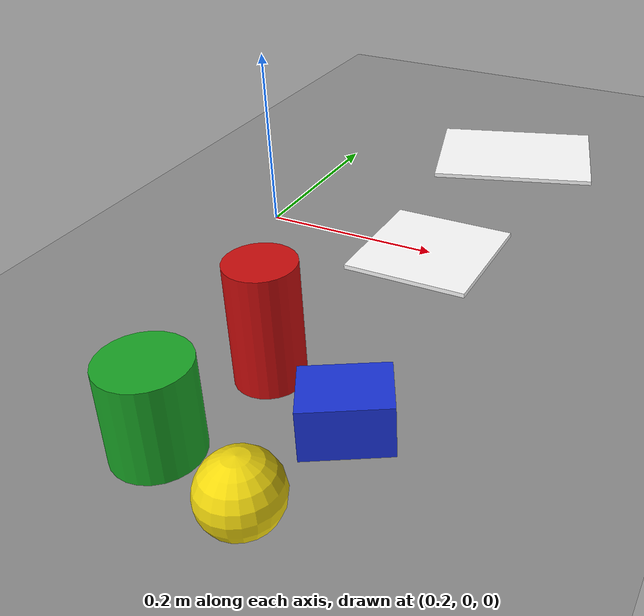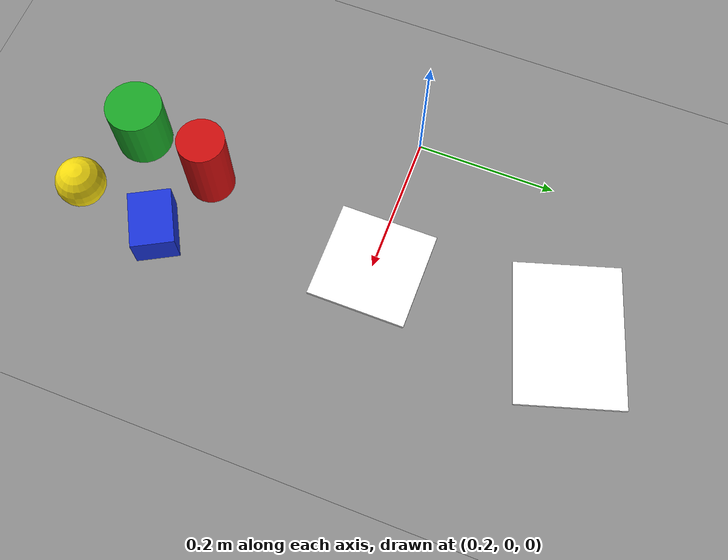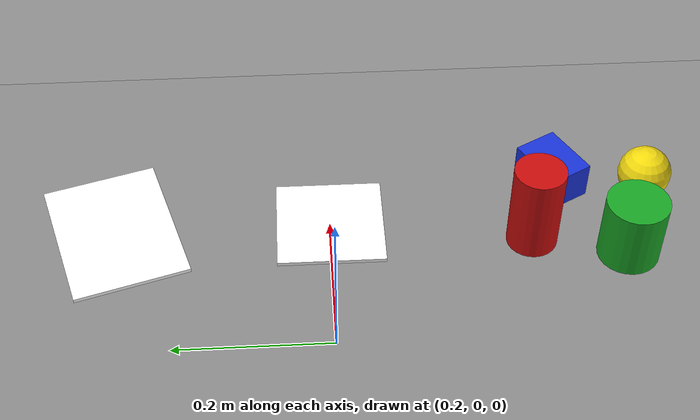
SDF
<?xml version="1.0"?>
<!--
  Visual servoing world (Gazebo Harmonic).
  Object poses must match config/targets.yaml (checked by test/test_config.py).
  The robot is spawned at the origin by the launch file.
-->
<sdf version="1.9">
  <world name="vs_world">
    <physics name="1ms" type="ignored">
      <max_step_size>0.001</max_step_size>
      <real_time_factor>1.0</real_time_factor>
    </physics>

    <plugin filename="gz-sim-physics-system" name="gz::sim::systems::Physics"/>
    <plugin filename="gz-sim-user-commands-system" name="gz::sim::systems::UserCommands"/>
    <plugin filename="gz-sim-scene-broadcaster-system" name="gz::sim::systems::SceneBroadcaster"/>
    <plugin filename="gz-sim-sensors-system" name="gz::sim::systems::Sensors">
      <render_engine>ogre2</render_engine>
    </plugin>

    <gravity>0 0 -9.81</gravity>
    <scene>
      <ambient>0.5 0.5 0.5 1</ambient>
      <background>0.75 0.8 0.85 1</background>
      <shadows>true</shadows>
      <grid>false</grid>
    </scene>

    <light type="directional" name="sun">
      <cast_shadows>true</cast_shadows>
      <pose>0 0 10 0 0 0</pose>
      <diffuse>0.85 0.85 0.85 1</diffuse>
      <specular>0.2 0.2 0.2 1</specular>
      <direction>-0.3 0.2 -0.9</direction>
    </light>

    <light type="point" name="lab_light">
      <cast_shadows>false</cast_shadows>
      <pose>0.6 -0.4 1.6 0 0 0</pose>
      <diffuse>0.4 0.4 0.4 1</diffuse>
      <specular>0.1 0.1 0.1 1</specular>
      <attenuation>
        <range>6</range>
        <constant>0.6</constant>
        <linear>0.05</linear>
        <quadratic>0.01</quadratic>
      </attenuation>
    </light>

    <model name="ground_plane">
      <static>true</static>
      <link name="link">
        <collision name="collision">
          <geometry><plane><normal>0 0 1</normal><size>10 10</size></plane></geometry>
        </collision>
        <visual name="visual">
          <geometry><plane><normal>0 0 1</normal><size>10 10</size></plane></geometry>
          <material>
            <ambient>0.55 0.55 0.55 1</ambient>
            <diffuse>0.55 0.55 0.55 1</diffuse>
            <specular>0.05 0.05 0.05 1</specular>
          </material>
        </visual>
      </link>
    </model>

    <!-- Targets (x y z roll pitch yaw) -->
    <include>
      <uri>model://aruco_target</uri>
      <name>aruco_target</name>
      <pose>0.40 0.00 0.0 0 0 0.0</pose>
    </include>
    <include>
      <uri>model://feature_target</uri>
      <name>feature_target</name>
      <pose>0.40 0.28 0.0 0 0 0.3</pose>
    </include>
    <include>
      <uri>model://red_can</uri>
      <name>red_can</name>
      <pose>0.36 -0.26 0.0 0 0 0.0</pose>
    </include>
    <include>
      <uri>model://blue_box</uri>
      <name>blue_box</name>
      <pose>0.46 -0.30 0.0 0 0 0.5</pose>
    </include>
    <include>
      <uri>model://green_cup</uri>
      <name>green_cup</name>
      <pose>0.33 -0.38 0.0 0 0 0.0</pose>
    </include>
    <include>
      <uri>model://yellow_ball</uri>
      <name>yellow_ball</name>
      <pose>0.44 -0.42 0.0 0 0 0.0</pose>
    </include>
  </world>
</sdf>

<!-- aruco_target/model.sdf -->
<sdf version="1.9">
  <model name="aruco_target">
    <static>true</static>
    <link name="link">
      <collision name="collision">
        <pose>0 0 0.0025 0 0 0</pose>
        <geometry><box><size>0.14 0.14 0.005</size></box></geometry>
      </collision>
      <visual name="visual">
        <pose>0 0 0.0025 0 0 0</pose>
        <geometry><box><size>0.14 0.14 0.005</size></box></geometry>
        <material>
          <ambient>1 1 1 1</ambient>
          <diffuse>1 1 1 1</diffuse>
          <specular>0.05 0.05 0.05 1</specular>
          <pbr>
            <metal>
              <albedo_map>model://aruco_target/materials/textures/aruco_4x4_50_id0.png</albedo_map>
              <roughness>0.9</roughness>
              <metalness>0.0</metalness>
            </metal>
          </pbr>
        </material>
      </visual>
    </link>
  </model>
</sdf>

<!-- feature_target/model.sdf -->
<sdf version="1.9">
  <model name="feature_target">
    <static>true</static>
    <link name="link">
      <collision name="collision">
        <pose>0 0 0.0025 0 0 0</pose>
        <geometry><box><size>0.2 0.15 0.005</size></box></geometry>
      </collision>
      <visual name="visual">
        <pose>0 0 0.0025 0 0 0</pose>
        <geometry><box><size>0.2 0.15 0.005</size></box></geometry>
        <material>
          <ambient>1 1 1 1</ambient>
          <diffuse>1 1 1 1</diffuse>
          <specular>0.05 0.05 0.05 1</specular>
          <pbr>
            <metal>
              <albedo_map>model://feature_target/materials/textures/feature_board.png</albedo_map>
              <roughness>0.9</roughness>
              <metalness>0.0</metalness>
            </metal>
          </pbr>
        </material>
      </visual>
    </link>
  </model>
</sdf>

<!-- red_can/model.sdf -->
<sdf version="1.9">
  <model name="red_can">
    <static>true</static>
    <link name="link">
      <collision name="collision">
        <pose>0 0 0.06 0 0 0</pose>
        <geometry><cylinder><radius>0.033</radius><length>0.12</length></cylinder></geometry>
      </collision>
      <visual name="visual">
        <pose>0 0 0.06 0 0 0</pose>
        <geometry><cylinder><radius>0.033</radius><length>0.12</length></cylinder></geometry>
        <material>
          <ambient>0.8 0.05 0.05 1</ambient>
          <diffuse>0.8 0.05 0.05 1</diffuse>
          <specular>0.3 0.3 0.3 1</specular>
        </material>
      </visual>
    </link>
  </model>
</sdf>

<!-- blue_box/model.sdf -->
<sdf version="1.9">
  <model name="blue_box">
    <static>true</static>
    <link name="link">
      <collision name="collision">
        <pose>0 0 0.025 0 0 0</pose>
        <geometry><box><size>0.08 0.06 0.05</size></box></geometry>
      </collision>
      <visual name="visual">
        <pose>0 0 0.025 0 0 0</pose>
        <geometry><box><size>0.08 0.06 0.05</size></box></geometry>
        <material>
          <ambient>0.1 0.2 0.85 1</ambient>
          <diffuse>0.1 0.2 0.85 1</diffuse>
          <specular>0.3 0.3 0.3 1</specular>
        </material>
      </visual>
    </link>
  </model>
</sdf>

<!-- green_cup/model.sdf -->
<sdf version="1.9">
  <model name="green_cup">
    <static>true</static>
    <link name="link">
      <collision name="collision">
        <pose>0 0 0.045 0 0 0</pose>
        <geometry><cylinder><radius>0.04</radius><length>0.09</length></cylinder></geometry>
      </collision>
      <visual name="visual">
        <pose>0 0 0.045 0 0 0</pose>
        <geometry><cylinder><radius>0.04</radius><length>0.09</length></cylinder></geometry>
        <material>
          <ambient>0.1 0.65 0.15 1</ambient>
          <diffuse>0.1 0.65 0.15 1</diffuse>
          <specular>0.3 0.3 0.3 1</specular>
        </material>
      </visual>
    </link>
  </model>
</sdf>

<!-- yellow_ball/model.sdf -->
<sdf version="1.9">
  <model name="yellow_ball">
    <static>true</static>
    <link name="link">
      <collision name="collision">
        <pose>0 0 0.035 0 0 0</pose>
        <geometry><sphere><radius>0.035</radius></sphere></geometry>
      </collision>
      <visual name="visual">
        <pose>0 0 0.035 0 0 0</pose>
        <geometry><sphere><radius>0.035</radius></sphere></geometry>
        <material>
          <ambient>0.95 0.85 0.05 1</ambient>
          <diffuse>0.95 0.85 0.05 1</diffuse>
          <specular>0.3 0.3 0.3 1</specular>
        </material>
      </visual>
    </link>
  </model>
</sdf>
